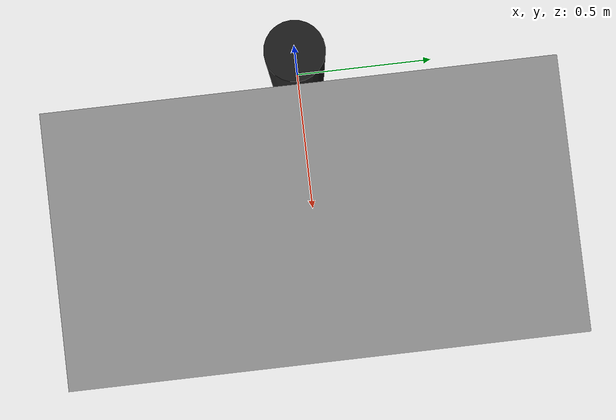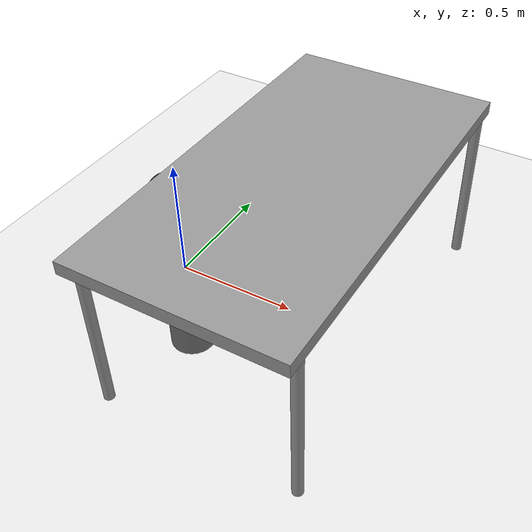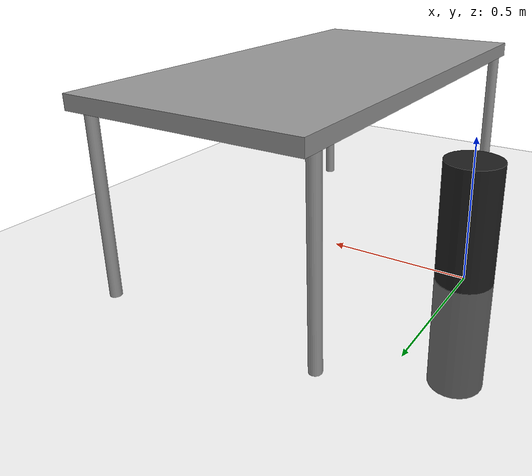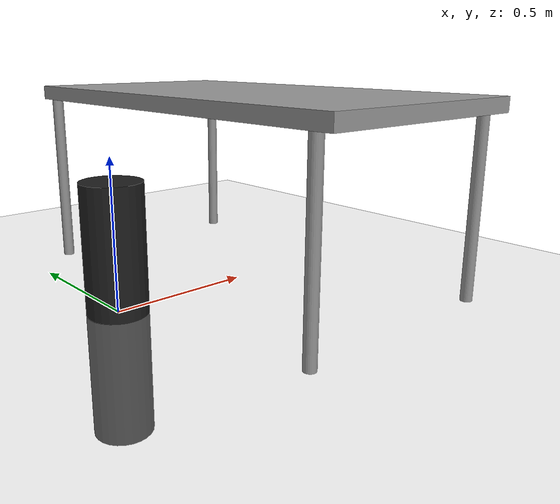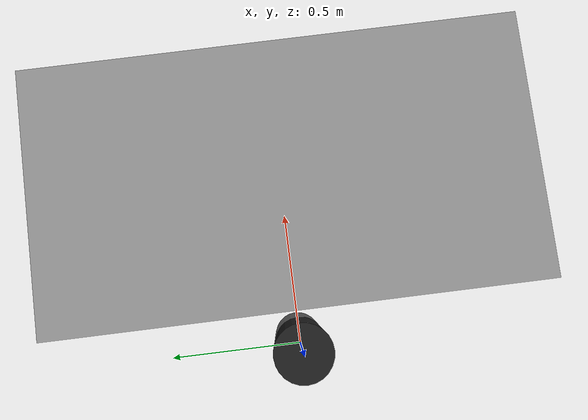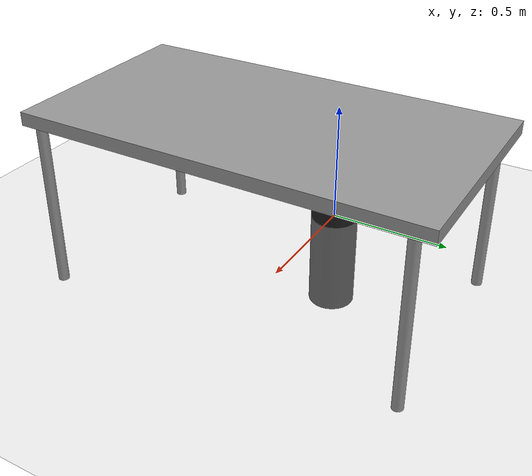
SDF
<sdf version="1.7">
 <world name="default">
  <include><uri>model://sun</uri></include>
  <include><uri>model://ground_plane</uri></include>
  <physics type="ode">
   <max_step_size>0.001</max_step_size>
   <real_time_update_rate>0</real_time_update_rate>
  </physics>
  <gravity>0 0 -9.8</gravity>
  <scene><shadows>0</shadows></scene>
  <model name="pedestal">
   <link name="link">
    <inertial>
     <mass>100</mass>
     <inertia><ixx>14.5833</ixx><ixy>0</ixy><ixz>0</ixz><iyy>14.5833</iyy><iyz>0</iyz><izz>12.5</izz></inertia>
    </inertial>
    <static>1</static>
    <visual name="visual">
     <geometry><cylinder><radius>0.1</radius><length>0.85</length></cylinder></geometry>
     <material>
      <script><name>Gazebo/Black</name><uri>file://media/materials/scripts/gazebo.material</uri></script>
      <shader type="pixel"><normal_map>__default__</normal_map></shader>
      <ambient>0.3 0.3 0.3 1</ambient>
      <diffuse>0.7 0.7 0.7 1</diffuse>
      <specular>0.01 0.01 0.01 1</specular>
      <emissive>0 0 0 1</emissive>
     </material>
    </visual>
    <collision name="collision">
     <geometry><cylinder><radius>0.1</radius><length>0.85</length></cylinder></geometry>
     <surface>
      <friction>
       <ode><mu>1</mu><mu2>1</mu2><fdir1>0 0 0</fdir1><slip1>0</slip1><slip2>0</slip2></ode>
       <torsional>
        <coefficient>1</coefficient>
        <patch_radius>0</patch_radius>
        <surface_radius>0</surface_radius>
        <use_patch_radius>1</use_patch_radius>
        <ode><slip>0</slip></ode>
       </torsional>
      </friction>
      <bounce><restitution_coefficient>0</restitution_coefficient><threshold>1e+06</threshold></bounce>
      <contact>
       <collide_without_contact>0</collide_without_contact>
       <collide_without_contact_bitmask>1</collide_without_contact_bitmask>
       <collide_bitmask>1</collide_bitmask>
       <ode>
        <soft_cfm>0</soft_cfm>
        <soft_erp>0.2</soft_erp>
        <kp>1e+13</kp>
        <kd>1</kd>
        <max_vel>0.01</max_vel>
        <min_depth>0</min_depth>
       </ode>
       <bullet>
        <split_impulse>1</split_impulse>
        <split_impulse_penetration_threshold>-0.01</split_impulse_penetration_threshold>
        <soft_cfm>0</soft_cfm>
        <soft_erp>0.2</soft_erp>
        <kp>1e+13</kp>
        <kd>1</kd>
       </bullet>
      </contact>
     </surface>
    </collision>
   </link>
   <static>1</static>
  </model>
  <model name="table">
   <link name="table_link">
    <static>1</static>
    <inertial>
     <mass>20</mass>
     <inertia><ixx>1.06817</ixx><ixy>0</ixy><ixz>0</ixz><iyy>3.7515</iyy><iyz>0</iyz><izz>4.81667</izz></inertia>
    </inertial>
    <visual name="back_left_leg">
     <pose>-0.68 0.38 0.325 0 -0 0</pose>
     <geometry><cylinder><radius>0.02</radius><length>0.65</length></cylinder></geometry>
     <material>
      <script><uri>file://media/materials/scripts/gazebo.material</uri><name>Gazebo/Grey</name></script>
      <shader type="pixel"><normal_map>__default__</normal_map></shader>
      <ambient>0.3 0.3 0.3 1</ambient>
      <diffuse>0.7 0.7 0.7 1</diffuse>
      <specular>0.01 0.01 0.01 1</specular>
      <emissive>0 0 0 1</emissive>
      <lighting>1</lighting>
     </material>
    </visual>
    <visual name="back_right_leg">
     <pose>-0.68 -0.38 0.325 0 -0 0</pose>
     <geometry><cylinder><radius>0.02</radius><length>0.65</length></cylinder></geometry>
     <material>
      <script><uri>file://media/materials/scripts/gazebo.material</uri><name>Gazebo/Grey</name></script>
      <shader type="pixel"><normal_map>__default__</normal_map></shader>
      <ambient>0.3 0.3 0.3 1</ambient>
      <diffuse>0.7 0.7 0.7 1</diffuse>
      <specular>0.01 0.01 0.01 1</specular>
      <emissive>0 0 0 1</emissive>
      <lighting>1</lighting>
     </material>
    </visual>
    <visual name="front_right_leg">
     <pose>0.68 -0.38 0.325 0 -0 0</pose>
     <geometry><cylinder><radius>0.02</radius><length>0.65</length></cylinder></geometry>
     <material>
      <script><uri>file://media/materials/scripts/gazebo.material</uri><name>Gazebo/Grey</name></script>
      <shader type="pixel"><normal_map>__default__</normal_map></shader>
      <ambient>0.3 0.3 0.3 1</ambient>
      <diffuse>0.7 0.7 0.7 1</diffuse>
      <specular>0.01 0.01 0.01 1</specular>
      <emissive>0 0 0 1</emissive>
      <lighting>1</lighting>
     </material>
    </visual>
    <visual name="front_left_leg">
     <pose>0.68 0.38 0.325 0 -0 0</pose>
     <geometry><cylinder><radius>0.02</radius><length>0.65</length></cylinder></geometry>
     <material>
      <script><uri>file://media/materials/scripts/gazebo.material</uri><name>Gazebo/Grey</name></script>
      <shader type="pixel"><normal_map>__default__</normal_map></shader>
      <ambient>0.3 0.3 0.3 1</ambient>
      <diffuse>0.7 0.7 0.7 1</diffuse>
      <specular>0.01 0.01 0.01 1</specular>
      <emissive>0 0 0 1</emissive>
      <lighting>1</lighting>
     </material>
    </visual>
    <visual name="visual1">
     <pose>0 0 0.65 0 -0 0</pose>
     <geometry><box><size>1.5 0.8 0.05</size></box></geometry>
     <material>
      <script><uri>file://media/materials/scripts/gazebo.material</uri><name>Gazebo/Grey</name></script>
      <shader type="pixel"><normal_map>__default__</normal_map></shader>
      <ambient>1 1 1 1</ambient>
      <diffuse>1 1 1 1</diffuse>
      <specular>0.2 0.2 0.2 1</specular>
      <emissive>0 0 0 1</emissive>
     </material>
    </visual>
    <collision name="back_right_legc">
     <pose>-0.68 -0.38 0.325 0 -0 0</pose>
     <geometry><cylinder><radius>0.02</radius><length>0.65</length></cylinder></geometry>
     <surface>
      <friction>
       <ode><mu>1</mu><mu2>1</mu2><fdir1>0 0 0</fdir1><slip1>0</slip1><slip2>0</slip2></ode>
       <torsional>
        <coefficient>1</coefficient>
        <patch_radius>0</patch_radius>
        <surface_radius>0</surface_radius>
        <use_patch_radius>1</use_patch_radius>
        <ode><slip>0</slip></ode>
       </torsional>
      </friction>
      <bounce><restitution_coefficient>0</restitution_coefficient><threshold>1e+06</threshold></bounce>
      <contact>
       <collide_without_contact>0</collide_without_contact>
       <collide_without_contact_bitmask>1</collide_without_contact_bitmask>
       <collide_bitmask>1</collide_bitmask>
       <ode>
        <soft_cfm>0</soft_cfm>
        <soft_erp>0.2</soft_erp>
        <kp>1e+13</kp>
        <kd>1</kd>
        <max_vel>0.01</max_vel>
        <min_depth>0</min_depth>
       </ode>
       <bullet>
        <split_impulse>1</split_impulse>
        <split_impulse_penetration_threshold>-0.01</split_impulse_penetration_threshold>
        <soft_cfm>0</soft_cfm>
        <soft_erp>0.2</soft_erp>
        <kp>1e+13</kp>
        <kd>1</kd>
       </bullet>
      </contact>
     </surface>
    </collision>
    <collision name="back_left_legc">
     <pose>-0.68 0.38 0.325 0 -0 0</pose>
     <geometry><cylinder><radius>0.02</radius><length>0.65</length></cylinder></geometry>
     <surface>
      <friction>
       <ode><mu>1</mu><mu2>1</mu2><fdir1>0 0 0</fdir1><slip1>0</slip1><slip2>0</slip2></ode>
       <torsional>
        <coefficient>1</coefficient>
        <patch_radius>0</patch_radius>
        <surface_radius>0</surface_radius>
        <use_patch_radius>1</use_patch_radius>
        <ode><slip>0</slip></ode>
       </torsional>
      </friction>
      <bounce><restitution_coefficient>0</restitution_coefficient><threshold>1e+06</threshold></bounce>
      <contact>
       <collide_without_contact>0</collide_without_contact>
       <collide_without_contact_bitmask>1</collide_without_contact_bitmask>
       <collide_bitmask>1</collide_bitmask>
       <ode>
        <soft_cfm>0</soft_cfm>
        <soft_erp>0.2</soft_erp>
        <kp>1e+13</kp>
        <kd>1</kd>
        <max_vel>0.01</max_vel>
        <min_depth>0</min_depth>
       </ode>
       <bullet>
        <split_impulse>1</split_impulse>
        <split_impulse_penetration_threshold>-0.01</split_impulse_penetration_threshold>
        <soft_cfm>0</soft_cfm>
        <soft_erp>0.2</soft_erp>
        <kp>1e+13</kp>
        <kd>1</kd>
       </bullet>
      </contact>
     </surface>
    </collision>
    <collision name="surface">
     <pose>0 0 0.65 0 -0 0</pose>
     <geometry><box><size>1.5 0.8 0.05</size></box></geometry>
     <surface>
      <friction>
       <ode><mu>0.6</mu><mu2>0.6</mu2><fdir1>0 0 0</fdir1><slip1>0</slip1><slip2>0</slip2></ode>
       <torsional>
        <coefficient>1</coefficient>
        <patch_radius>0</patch_radius>
        <surface_radius>0</surface_radius>
        <use_patch_radius>1</use_patch_radius>
        <ode><slip>0</slip></ode>
       </torsional>
      </friction>
      <bounce><restitution_coefficient>0</restitution_coefficient><threshold>1e+06</threshold></bounce>
      <contact>
       <collide_without_contact>0</collide_without_contact>
       <collide_without_contact_bitmask>1</collide_without_contact_bitmask>
       <collide_bitmask>1</collide_bitmask>
       <ode>
        <soft_cfm>0</soft_cfm>
        <soft_erp>0.2</soft_erp>
        <kp>1e+13</kp>
        <kd>1</kd>
        <max_vel>0.01</max_vel>
        <min_depth>0</min_depth>
       </ode>
       <bullet>
        <split_impulse>1</split_impulse>
        <split_impulse_penetration_threshold>-0.01</split_impulse_penetration_threshold>
        <soft_cfm>0</soft_cfm>
        <soft_erp>0.2</soft_erp>
        <kp>1e+13</kp>
        <kd>1</kd>
       </bullet>
      </contact>
     </surface>
    </collision>
    <collision name="front_right_legc">
     <pose>0.68 -0.38 0.325 0 -0 0</pose>
     <geometry><cylinder><radius>0.02</radius><length>0.65</length></cylinder></geometry>
     <surface>
      <friction>
       <ode><mu>1</mu><mu2>1</mu2><fdir1>0 0 0</fdir1><slip1>0</slip1><slip2>0</slip2></ode>
       <torsional>
        <coefficient>1</coefficient>
        <patch_radius>0</patch_radius>
        <surface_radius>0</surface_radius>
        <use_patch_radius>1</use_patch_radius>
        <ode><slip>0</slip></ode>
       </torsional>
      </friction>
      <bounce><restitution_coefficient>0</restitution_coefficient><threshold>1e+06</threshold></bounce>
      <contact>
       <collide_without_contact>0</collide_without_contact>
       <collide_without_contact_bitmask>1</collide_without_contact_bitmask>
       <collide_bitmask>1</collide_bitmask>
       <ode>
        <soft_cfm>0</soft_cfm>
        <soft_erp>0.2</soft_erp>
        <kp>1e+13</kp>
        <kd>1</kd>
        <max_vel>0.01</max_vel>
        <min_depth>0</min_depth>
       </ode>
       <bullet>
        <split_impulse>1</split_impulse>
        <split_impulse_penetration_threshold>-0.01</split_impulse_penetration_threshold>
        <soft_cfm>0</soft_cfm>
        <soft_erp>0.2</soft_erp>
        <kp>1e+13</kp>
        <kd>1</kd>
       </bullet>
      </contact>
     </surface>
    </collision>
    <collision name="front_left_legc">
     <pose>0.68 0.38 0.325 0 -0 0</pose>
     <geometry><cylinder><radius>0.02</radius><length>0.65</length></cylinder></geometry>
     <surface>
      <friction>
       <ode><mu>1</mu><mu2>1</mu2><fdir1>0 0 0</fdir1><slip1>0</slip1><slip2>0</slip2></ode>
       <torsional>
        <coefficient>1</coefficient>
        <patch_radius>0</patch_radius>
        <surface_radius>0</surface_radius>
        <use_patch_radius>1</use_patch_radius>
        <ode><slip>0</slip></ode>
       </torsional>
      </friction>
      <bounce><restitution_coefficient>0</restitution_coefficient><threshold>1e+06</threshold></bounce>
      <contact>
       <collide_without_contact>0</collide_without_contact>
       <collide_without_contact_bitmask>1</collide_without_contact_bitmask>
       <collide_bitmask>1</collide_bitmask>
       <ode>
        <soft_cfm>0</soft_cfm>
        <soft_erp>0.2</soft_erp>
        <kp>1e+13</kp>
        <kd>1</kd>
        <max_vel>0.01</max_vel>
        <min_depth>0</min_depth>
       </ode>
       <bullet>
        <split_impulse>1</split_impulse>
        <split_impulse_penetration_threshold>-0.01</split_impulse_penetration_threshold>
        <soft_cfm>0</soft_cfm>
        <soft_erp>0.2</soft_erp>
        <kp>1e+13</kp>
        <kd>1</kd>
       </bullet>
      </contact>
     </surface>
    </collision>
   </link>
   <static>1</static>
   <pose>0.55 0 0 0 -0 1.5708</pose>
  </model>
 </world>
</sdf>
